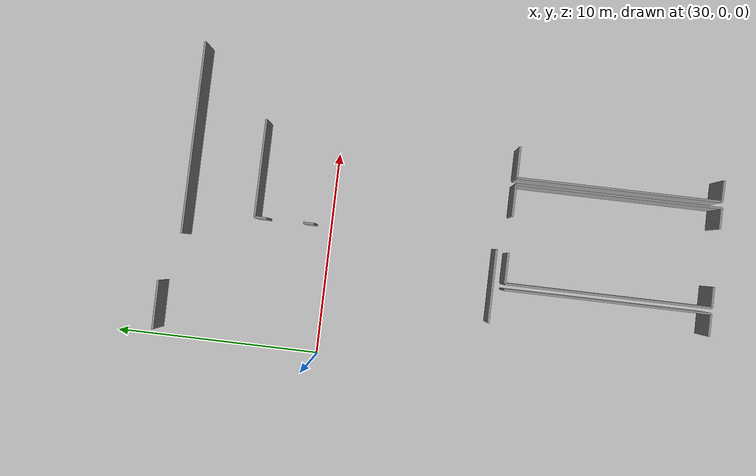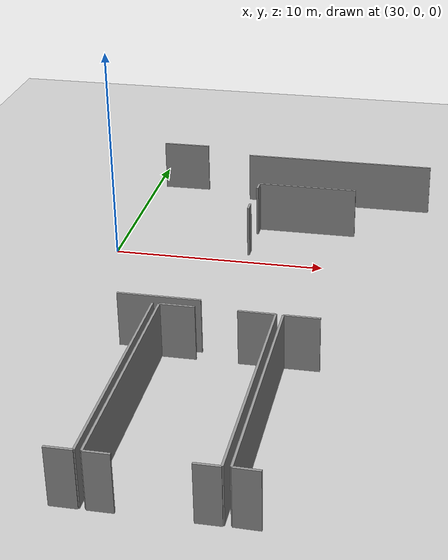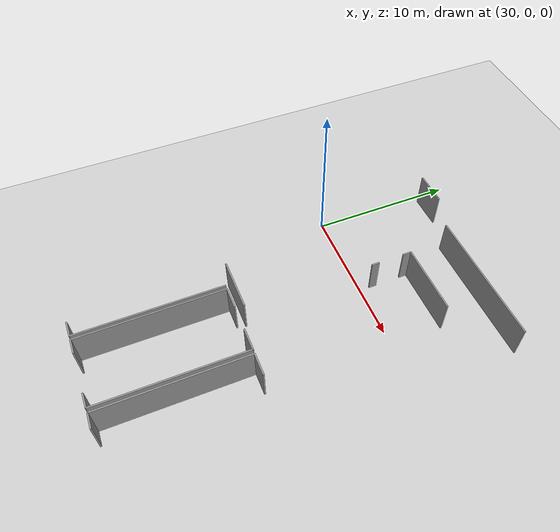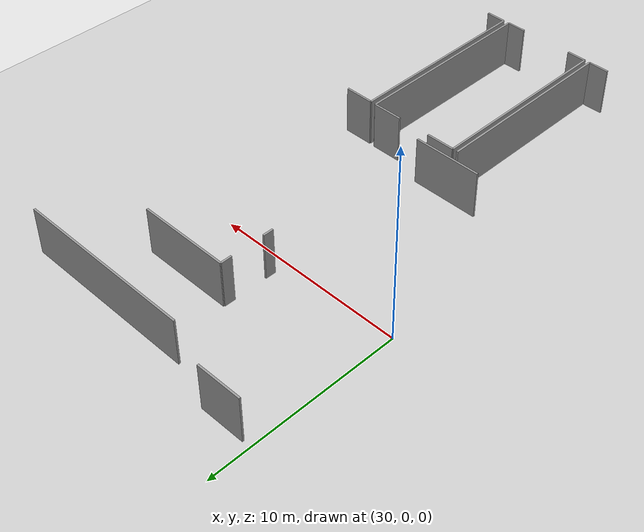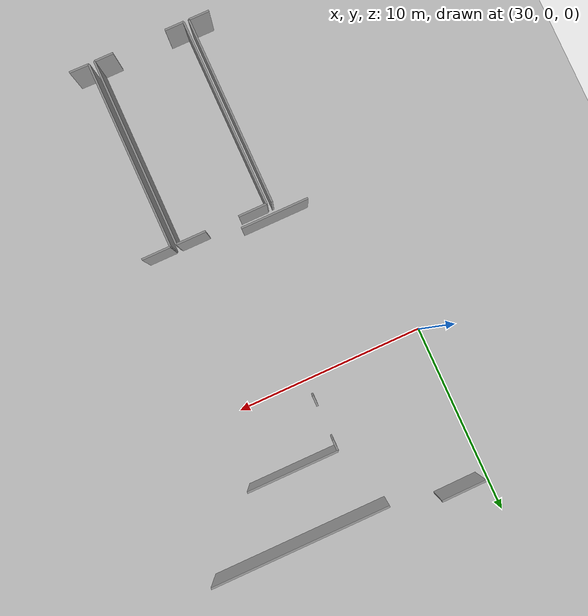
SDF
<sdf version="1.6">
 <world name="default">
  <model name="ground_plane">
   <static>1</static>
   <link name="link">
    <collision name="collision">
     <geometry><plane><normal>0 0 1</normal><size>100 100</size></plane></geometry>
     <surface><friction><ode><mu>100</mu><mu2>50</mu2></ode></friction></surface>
    </collision>
    <visual name="visual">
     <cast_shadows>0</cast_shadows>
     <geometry><plane><normal>0 0 1</normal><size>100 100</size></plane></geometry>
     <material>
      <script><uri>file://media/materials/scripts/gazebo.material</uri><name>Gazebo/Grey</name></script>
     </material>
    </visual>
   </link>
  </model>
  <model name="50055641">
   <static>1</static>
   <link name="Wall_360">
    <collision name="Wall_360_Collision">
     <geometry><box><size>9.36878721324 0.1 2.5</size></box></geometry>
     <pose>4.68439360662 0 1.25 0 0 0</pose>
    </collision>
    <visual name="Wall_360_Visual">
     <pose>4.68439360662 0 1.25 0 0 0</pose>
     <geometry><box><size>9.36878721324 0.1 2.5</size></box></geometry>
     <material>
      <script><uri>file://media/materials/scripts/gazebo.material</uri><name>Gazebo/Grey</name></script>
      <ambient>1 1 1 1</ambient>
     </material>
    </visual>
    <pose>104.401858599 -11.7147608831 0 0 0 0.0</pose>
   </link>
   <link name="Wall_365">
    <collision name="Wall_365_Collision">
     <geometry><box><size>3.58097728802 0.1 2.5</size></box></geometry>
     <pose>1.79048864401 0 1.25 0 0 0</pose>
    </collision>
    <visual name="Wall_365_Visual">
     <pose>1.79048864401 0 1.25 0 0 0</pose>
     <geometry><box><size>3.58097728802 0.1 2.5</size></box></geometry>
     <material>
      <script><uri>file://media/materials/scripts/gazebo.material</uri><name>Gazebo/Grey</name></script>
      <ambient>1 1 1 1</ambient>
     </material>
    </visual>
    <pose>105.39552362 -26.8758013939 0 0 0 3.14159265359</pose>
   </link>
   <link name="Wall_370">
    <collision name="Wall_370_Collision">
     <geometry><box><size>10.0019043025 0.1 2.5</size></box></geometry>
     <pose>5.00095215123 0 1.25 0 0 0</pose>
    </collision>
    <visual name="Wall_370_Visual">
     <pose>5.00095215123 0 1.25 0 0 0</pose>
     <geometry><box><size>10.0019043025 0.1 2.5</size></box></geometry>
     <material>
      <script><uri>file://media/materials/scripts/gazebo.material</uri><name>Gazebo/Grey</name></script>
      <ambient>1 1 1 1</ambient>
     </material>
    </visual>
    <pose>103.492490701 -27.4385862459 0 0 0 -1.57079632679</pose>
   </link>
   <link name="Wall_371">
    <collision name="Wall_371_Collision">
     <geometry><box><size>1.08735670124 0.1 2.5</size></box></geometry>
     <pose>0.54367835062 0 1.25 0 0 0</pose>
    </collision>
    <visual name="Wall_371_Visual">
     <pose>0.54367835062 0 1.25 0 0 0</pose>
     <geometry><box><size>1.08735670124 0.1 2.5</size></box></geometry>
     <material>
      <script><uri>file://media/materials/scripts/gazebo.material</uri><name>Gazebo/Grey</name></script>
      <ambient>1 1 1 1</ambient>
     </material>
    </visual>
    <pose>103.492490701 -37.4404905483 0 0 0 3.14159265359</pose>
   </link>
   <link name="Wall_373">
    <collision name="Wall_373_Collision">
     <geometry><box><size>1.01004202161 0.1 2.5</size></box></geometry>
     <pose>0.505021010804 0 1.25 0 0 0</pose>
    </collision>
    <visual name="Wall_373_Visual">
     <pose>0.505021010804 0 1.25 0 0 0</pose>
     <geometry><box><size>1.01004202161 0.1 2.5</size></box></geometry>
     <material>
      <script><uri>file://media/materials/scripts/gazebo.material</uri><name>Gazebo/Grey</name></script>
      <ambient>1 1 1 1</ambient>
     </material>
    </visual>
    <pose>108.600972464 -37.4426487578 0 0 0 3.14159265359</pose>
   </link>
   <link name="Wall_374">
    <collision name="Wall_374_Collision">
     <geometry><box><size>1.01626274296 0.1 2.5</size></box></geometry>
     <pose>0.508131371479 0 1.25 0 0 0</pose>
    </collision>
    <visual name="Wall_374_Visual">
     <pose>0.508131371479 0 1.25 0 0 0</pose>
     <geometry><box><size>1.01626274296 0.1 2.5</size></box></geometry>
     <material>
      <script><uri>file://media/materials/scripts/gazebo.material</uri><name>Gazebo/Grey</name></script>
      <ambient>1 1 1 1</ambient>
     </material>
    </visual>
    <pose>104.790590207 -37.4426487578 0 0 0 3.14159265359</pose>
   </link>
   <link name="Wall_375">
    <collision name="Wall_375_Collision">
     <geometry><box><size>9.98387690589 0.1 2.5</size></box></geometry>
     <pose>4.99193845294 0 1.25 0 0 0</pose>
    </collision>
    <visual name="Wall_375_Visual">
     <pose>4.99193845294 0 1.25 0 0 0</pose>
     <geometry><box><size>9.98387690589 0.1 2.5</size></box></geometry>
     <material>
      <script><uri>file://media/materials/scripts/gazebo.material</uri><name>Gazebo/Grey</name></script>
      <ambient>1 1 1 1</ambient>
     </material>
    </visual>
    <pose>103.774327464 -37.4426487578 0 0 0 1.57079632679</pose>
   </link>
   <link name="Wall_376">
    <collision name="Wall_376_Collision">
     <geometry><box><size>1.50033642677 0.1 2.5</size></box></geometry>
     <pose>0.750168213383 0 1.25 0 0 0</pose>
    </collision>
    <visual name="Wall_376_Visual">
     <pose>0.750168213383 0 1.25 0 0 0</pose>
     <geometry><box><size>1.50033642677 0.1 2.5</size></box></geometry>
     <material>
      <script><uri>file://media/materials/scripts/gazebo.material</uri><name>Gazebo/Grey</name></script>
      <ambient>1 1 1 1</ambient>
     </material>
    </visual>
    <pose>103.774327464 -27.4587718519 0 0 0 0.0</pose>
   </link>
   <link name="Wall_377">
    <collision name="Wall_377_Collision">
     <geometry><box><size>1.56470184971 0.1 2.5</size></box></geometry>
     <pose>0.782350924856 0 1.25 0 0 0</pose>
    </collision>
    <visual name="Wall_377_Visual">
     <pose>0.782350924856 0 1.25 0 0 0</pose>
     <geometry><box><size>1.56470184971 0.1 2.5</size></box></geometry>
     <material>
      <script><uri>file://media/materials/scripts/gazebo.material</uri><name>Gazebo/Grey</name></script>
      <ambient>1 1 1 1</ambient>
     </material>
    </visual>
    <pose>107.041729614 -27.4587718519 0 0 0 0.0</pose>
   </link>
   <link name="Wall_378">
    <collision name="Wall_378_Collision">
     <geometry><box><size>9.98387839833 0.1 2.5</size></box></geometry>
     <pose>4.99193919916 0 1.25 0 0 0</pose>
    </collision>
    <visual name="Wall_378_Visual">
     <pose>4.99193919916 0 1.25 0 0 0</pose>
     <geometry><box><size>9.98387839833 0.1 2.5</size></box></geometry>
     <material>
      <script><uri>file://media/materials/scripts/gazebo.material</uri><name>Gazebo/Grey</name></script>
      <ambient>1 1 1 1</ambient>
     </material>
    </visual>
    <pose>108.606431464 -27.4587718519 0 0 0 -1.57134310836</pose>
   </link>
   <link name="Wall_379">
    <collision name="Wall_379_Collision">
     <geometry><box><size>9.94693343828 0.1 2.5</size></box></geometry>
     <pose>4.97346671914 0 1.25 0 0 0</pose>
    </collision>
    <visual name="Wall_379_Visual">
     <pose>4.97346671914 0 1.25 0 0 0</pose>
     <geometry><box><size>9.94693343828 0.1 2.5</size></box></geometry>
     <material>
      <script><uri>file://media/materials/scripts/gazebo.material</uri><name>Gazebo/Grey</name></script>
      <ambient>1 1 1 1</ambient>
     </material>
    </visual>
    <pose>108.91340502 -37.4184006398 0 0 0 1.57079632679</pose>
   </link>
   <link name="Wall_380">
    <collision name="Wall_380_Collision">
     <geometry><box><size>1.51798296284 0.1 2.5</size></box></geometry>
     <pose>0.75899148142 0 1.25 0 0 0</pose>
    </collision>
    <visual name="Wall_380_Visual">
     <pose>0.75899148142 0 1.25 0 0 0</pose>
     <geometry><box><size>1.51798296284 0.1 2.5</size></box></geometry>
     <material>
      <script><uri>file://media/materials/scripts/gazebo.material</uri><name>Gazebo/Grey</name></script>
      <ambient>1 1 1 1</ambient>
     </material>
    </visual>
    <pose>108.91340502 -27.4714672016 0 0 0 0.0</pose>
   </link>
   <link name="Wall_386">
    <collision name="Wall_386_Collision">
     <geometry><box><size>1.03183676393 0.1 2.5</size></box></geometry>
     <pose>0.515918381965 0 1.25 0 0 0</pose>
    </collision>
    <visual name="Wall_386_Visual">
     <pose>0.515918381965 0 1.25 0 0 0</pose>
     <geometry><box><size>1.03183676393 0.1 2.5</size></box></geometry>
     <material>
      <script><uri>file://media/materials/scripts/gazebo.material</uri><name>Gazebo/Grey</name></script>
      <ambient>1 1 1 1</ambient>
     </material>
    </visual>
    <pose>109.945029136 -37.4393479668 0 0 0 3.12129025031</pose>
   </link>
   <link name="Wall_387">
    <collision name="Wall_387_Collision">
     <geometry><box><size>0.542599245896 0.1 2.5</size></box></geometry>
     <pose>0.271299622948 0 1.25 0 0 0</pose>
    </collision>
    <visual name="Wall_387_Visual">
     <pose>0.271299622948 0 1.25 0 0 0</pose>
     <geometry><box><size>0.542599245896 0.1 2.5</size></box></geometry>
     <material>
      <script><uri>file://media/materials/scripts/gazebo.material</uri><name>Gazebo/Grey</name></script>
      <ambient>1 1 1 1</ambient>
     </material>
    </visual>
    <pose>105.57922533 -18.0182559129 0 0 0 1.57079632679</pose>
   </link>
   <link name="Wall_388">
    <collision name="Wall_388_Collision">
     <geometry><box><size>0.585128667369 0.1 2.5</size></box></geometry>
     <pose>0.292564333685 0 1.25 0 0 0</pose>
    </collision>
    <visual name="Wall_388_Visual">
     <pose>0.292564333685 0 1.25 0 0 0</pose>
     <geometry><box><size>0.585128667369 0.1 2.5</size></box></geometry>
     <material>
      <script><uri>file://media/materials/scripts/gazebo.material</uri><name>Gazebo/Grey</name></script>
      <ambient>1 1 1 1</ambient>
     </material>
    </visual>
    <pose>105.57922533 -15.7038936638 0 0 0 1.57079632679</pose>
   </link>
   <link name="Wall_389">
    <collision name="Wall_389_Collision">
     <geometry><box><size>4.7742132057 0.1 2.5</size></box></geometry>
     <pose>2.38710660285 0 1.25 0 0 0</pose>
    </collision>
    <visual name="Wall_389_Visual">
     <pose>2.38710660285 0 1.25 0 0 0</pose>
     <geometry><box><size>4.7742132057 0.1 2.5</size></box></geometry>
     <material>
      <script><uri>file://media/materials/scripts/gazebo.material</uri><name>Gazebo/Grey</name></script>
      <ambient>1 1 1 1</ambient>
     </material>
    </visual>
    <pose>105.57922533 -15.1187649964 0 0 0 0.0</pose>
   </link>
   <link name="Wall_411">
    <collision name="Wall_411_Collision">
     <geometry><box><size>2.34556632048 0.1 2.5</size></box></geometry>
     <pose>1.17278316024 0 1.25 0 0 0</pose>
    </collision>
    <visual name="Wall_411_Visual">
     <pose>1.17278316024 0 1.25 0 0 0</pose>
     <geometry><box><size>2.34556632048 0.1 2.5</size></box></geometry>
     <material>
      <script><uri>file://media/materials/scripts/gazebo.material</uri><name>Gazebo/Grey</name></script>
      <ambient>1 1 1 1</ambient>
     </material>
    </visual>
    <pose>102.029351648 -10.888801432 0 0 0 -3.13233716687</pose>
   </link>
   <pose>-69.25 18.7344164583 0 0 0 0</pose>
  </model>
 </world>
</sdf>
